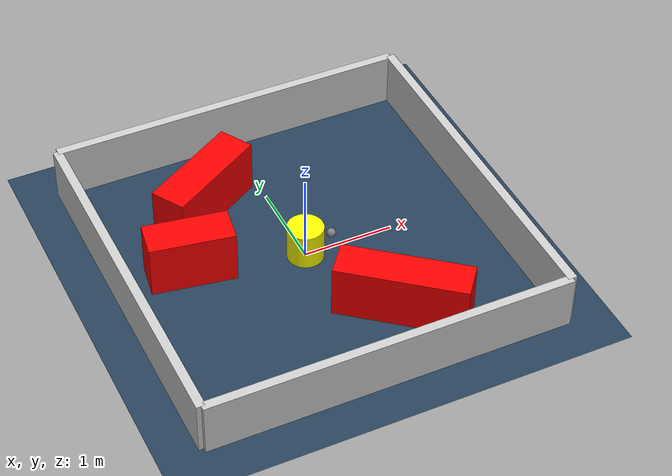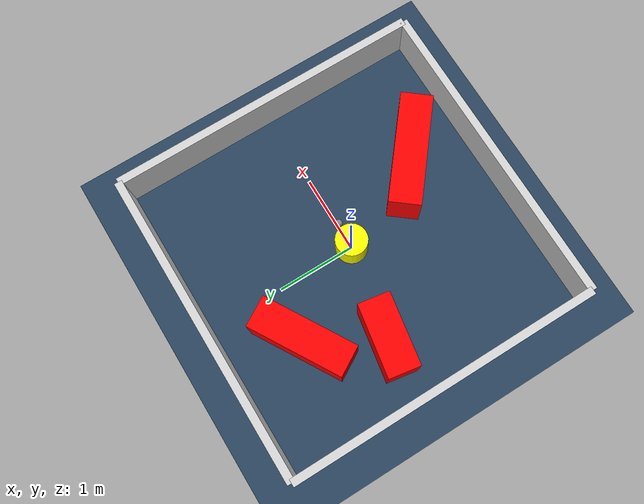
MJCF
<?xml version="1.0" ?>
<mujoco model="generated_environment">
  <option timestep="0.01" integrator="RK4" cone="elliptic"/>
  <default>
    <geom density="1"/>
  </default>
  <asset>
    <texture builtin="gradient" height="3072" rgb1="0.3 0.5 0.7" rgb2="0 0 0" type="skybox" width="512"/>
    <texture builtin="checker" height="300" mark="edge" markrgb="0.8 0.8 0.8" name="groundplane" rgb1="0.2 0.3 0.4" rgb2="0.1 0.2 0.3" type="2d" width="300"/>
    <material name="groundplane" reflectance="0.2" texrepeat="5 5" texture="groundplane" texuniform="true"/>
    <material name="robot" rgba="0.0 1.0 0.0 1"/>
  </asset>
  <worldbody>
    <light dir="0 0 -1" directional="true" pos="0 0 1.5"/>
    <geom condim="4" friction="1.0 0.005 0.001" material="groundplane" name="floor" size="0 0 0.05" type="plane"/>
    <body name="walls">
      <geom name="wall_1" condim="4" pos="-2.0 0.0 0.3" rgba="0.800000011920929 0.800000011920929 0.800000011920929 1.0" size="0.05 2.0 0.3" type="box"/>
      <geom name="wall_2" condim="4" pos="2.0 0.0 0.3" rgba="0.800000011920929 0.800000011920929 0.800000011920929 1.0" size="0.05 2.0 0.3" type="box"/>
      <geom name="wall_3" condim="4" pos="0.0 -2.0 0.3" rgba="0.800000011920929 0.800000011920929 0.800000011920929 1.0" size="2.0 0.05 0.3" type="box"/>
      <geom name="wall_4" condim="4" pos="0.0 2.0 0.3" rgba="0.800000011920929 0.800000011920929 0.800000011920929 1.0" size="2.0 0.05 0.3" type="box"/>
    </body>
    <body name="robot">
      <joint name="joint_x" type="slide" pos="0 0 0" axis="1 0 0"/>
      <joint name="joint_y" type="slide" pos="0 0 0" axis="0 1 0"/>
      <geom name="robot" type="sphere" pos="0.3 0.0 0.2" size="0.05" mass="5." friction="1.0 0.005 0.0001" condim="4" rgba="0.5 0.5 0.5 1.0"/>
      <site name="sensor_ball"/>
    </body>
    <body name="obstacle_movable_1">
      <geom name="obstacle_movable_1" condim="4" pos="0.0 0.0 0.2" euler="0 0 0.0" friction="1.0 0.005 0.001" rgba="1.0 1.0 0.0 1.0" size="0.2 0.2 0.0" type="cylinder" mass="0.1"/>
      <joint type="free"/>
    </body>
    <body name="obstacle_2_static">
      <geom name="obstacle_2_static" condim="4" pos="0.5447339447081017 -1.1746316336669445 0.3" euler="0 0 321.16770026864566" friction="1.0 0.005 0.001" rgba="1 0 0 1" size="0.7008278100670438 0.2 0.3" type="box"/>
    </body>
    <body name="obstacle_3_static">
      <geom name="obstacle_3_static" condim="4" pos="-0.697860896844933 1.089396723832076 0.3" euler="0 0 210.50579669080366" friction="1.0 0.005 0.001" rgba="1 0 0 1" size="0.6113211181677605 0.2 0.3" type="box"/>
    </body>
    <body name="obstacle_4_static">
      <geom name="obstacle_4_static" condim="4" pos="-1.2014789637733343 0.24875223880985886 0.3" euler="0 0 170.46326878832312" friction="1.0 0.005 0.001" rgba="1 0 0 1" size="0.4568651580490977 0.2 0.3" type="box"/>
    </body>
  </worldbody>
  <actuator>
    <motor name="actuator_x" joint="joint_x" gear="1" ctrlrange="-1 1"/>
    <motor name="actuator_y" joint="joint_y" gear="1" ctrlrange="-1 1"/>
  </actuator>
</mujoco>
